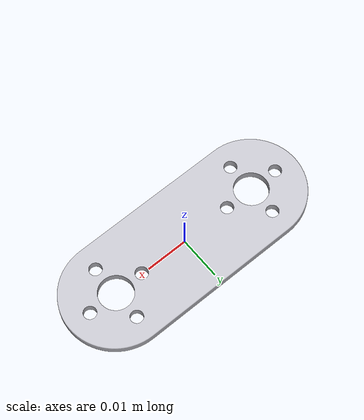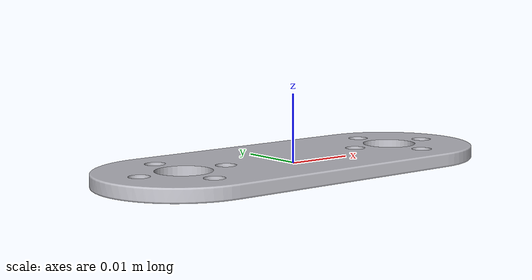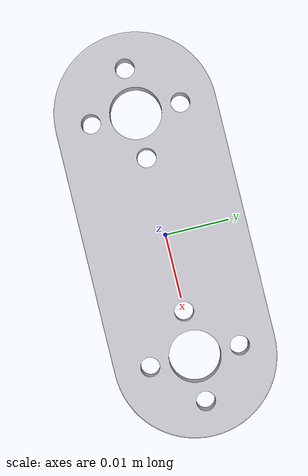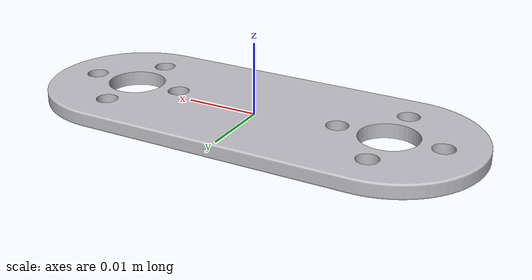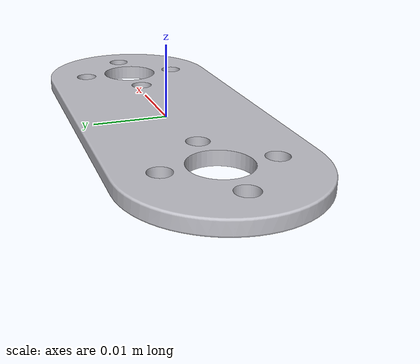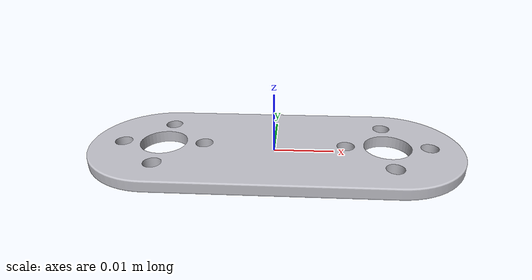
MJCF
<?xml version='1.0' encoding='utf-8'?>
<mujoco model="part_straight">
  <compiler angle="radian" meshdir="." autolimits="true"/>
  <visual>
    <global offwidth="1024" offheight="1024"/>
    <headlight ambient="0.55 0.55 0.55" diffuse="0.6 0.6 0.6" specular="0.2 0.2 0.2"/>
  </visual>
  <default>
    <default class="visual"><geom type="mesh" contype="0" conaffinity="0" group="2" density="0"/></default>
    <default class="collision"><geom type="mesh" group="3"/></default>
  </default>
  <asset>
    <mesh name="straight" file="一字支架.STL" scale="0.001 0.001 0.001"/>
    <material name="bracket" rgba="0.75 0.75 0.78 1"/>
  </asset>
  <worldbody>
    <!-- source 一字支架.STL: bbox min 0.000251 0.000251 0.001254 max 63.000256 25.000252 2.001254 mm, size 63.000005 25.000001 2.000000 mm -->
    <body name="straight">
      <geom name="straight_visual" mesh="straight" class="visual" material="bracket" pos="-0.031500 -0.012500 -0.001001"/>
      <geom name="straight_collision" mesh="straight" class="collision" pos="-0.031500 -0.012500 -0.001001" density="2700"/>
    </body>
  </worldbody>
</mujoco>
